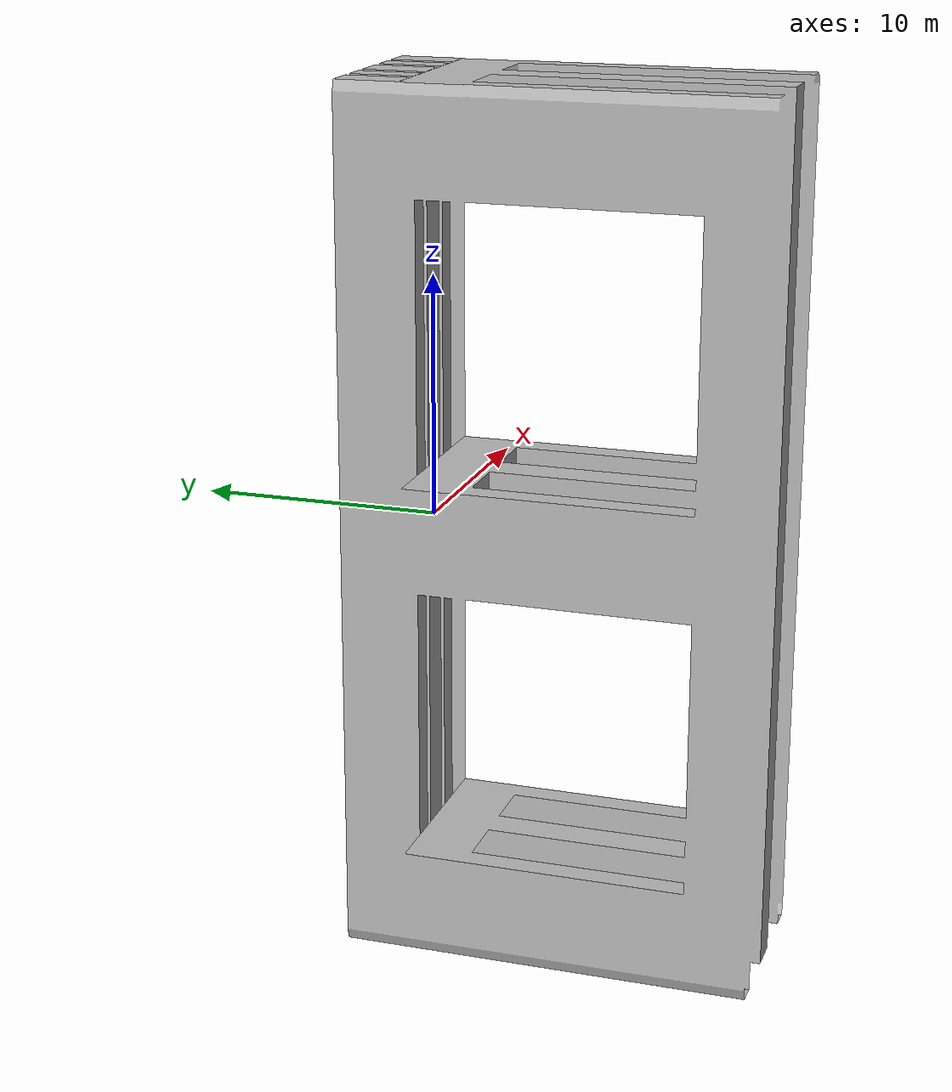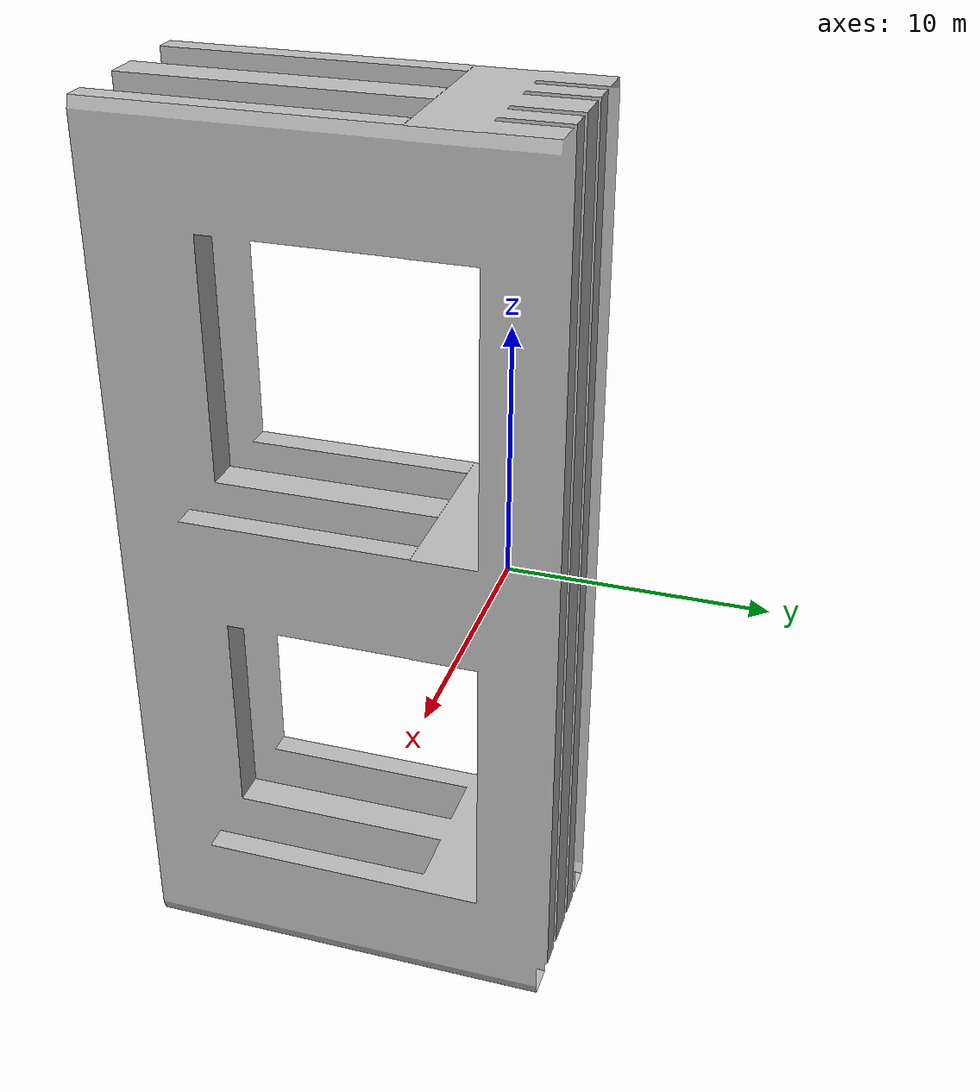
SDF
<?xml version="1.0" ?>
<sdf version="1.4">
	<model name="pallet27cm">
		<static>true</static>
		<link name="link">
			<pose>0 0 0.06 0 0 0</pose>
			<collision name="collision">
				<geometry>
					<mesh>
						<uri>model://pallet_benchmark/mesh/pallet.dae</uri>
						<scale>1.0 11.81 3</scale>
					</mesh>
				</geometry>

			</collision>
			<visual name="visual">
				<geometry>
					<mesh>
						<uri>model://pallet_benchmark/mesh/pallet.dae</uri>
						<scale>1.0 11.81 3</scale>
					</mesh>
				</geometry>
			</visual>
		</link>
	</model>
</sdf>
